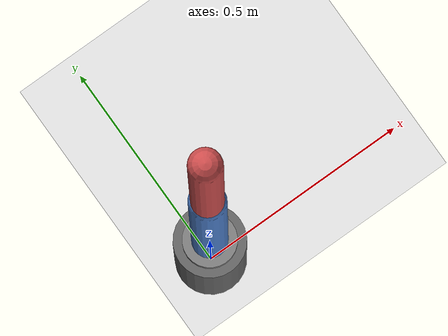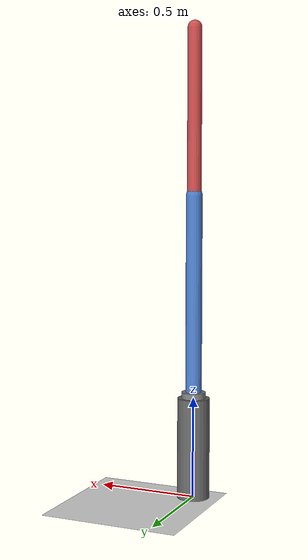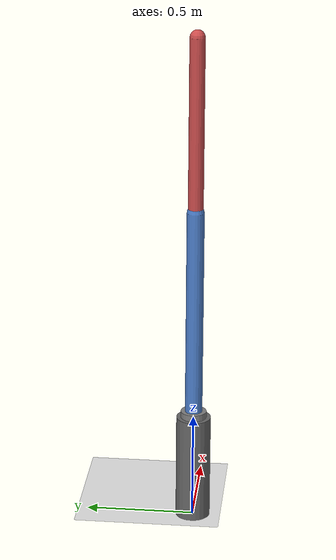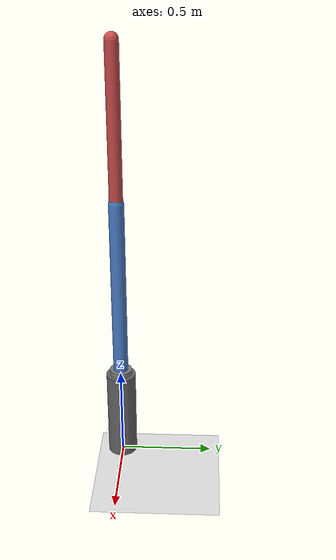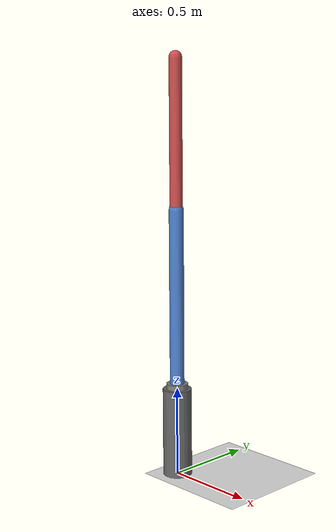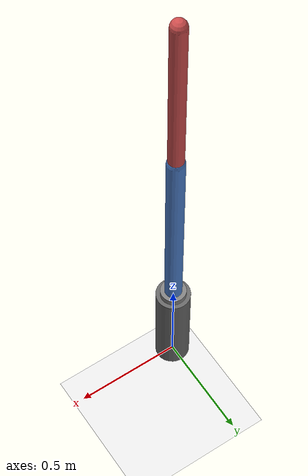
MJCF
<mujoco model="spherical_wrist_arm">
    <compiler angle="degree"/>
    <option gravity="0 0 -9.81" timestep="0.002"/>

    <default>
        <joint damping="0.5" limited="true"/>
        <geom contype="0" conaffinity="0"/>
    </default>

    <worldbody>
        <light name="top" pos="0 0 3" dir="0 0 -1" diffuse="0.8 0.8 0.8"/>
        <light name="front" pos="2 -2 2" dir="-1 1 -1" diffuse="0.5 0.5 0.5"/>
        <geom name="floor" type="plane" size="3 3 0.1" rgba="0.9 0.9 0.9 1"/>

        <!-- Base pedestal (provided) -->
        <geom name="base_pedestal" type="cylinder" size="0.08 0.25"
              pos="0 0 0.25" rgba="0.4 0.4 0.4 1"/>

        <!-- Arm (provided) — same as step_04 -->
        <body name="base_rotator" pos="0 0 0.5">
            <joint name="joint1" type="hinge" axis="0 0 1" range="-170 170"/>
            <geom name="base_geom" type="cylinder" size="0.06 0.03"
                  rgba="0.5 0.5 0.5 1"/>

            <body name="upper_arm" pos="0 0 0">
                <joint name="joint2" type="hinge" axis="0 1 0" range="-120 120"/>
                <geom name="upper_arm_geom" type="capsule"
                      fromto="0 0 0  0 0 1.0" size="0.04" rgba="0.3 0.5 0.8 1"/>

                <body name="forearm" pos="0 0 1.0">
                    <joint name="joint3" type="hinge" axis="0 1 0" range="-140 140"/>
                    <geom name="forearm_geom" type="capsule"
                          fromto="0 0 0  0 0 0.8" size="0.035" rgba="0.8 0.3 0.3 1"/>

                </body>
            </body>
        </body>
    </worldbody>

</mujoco>
